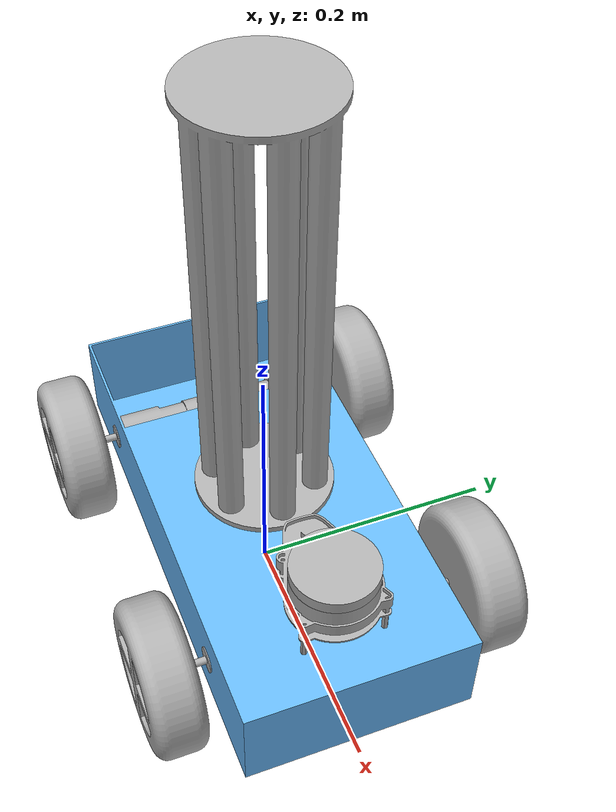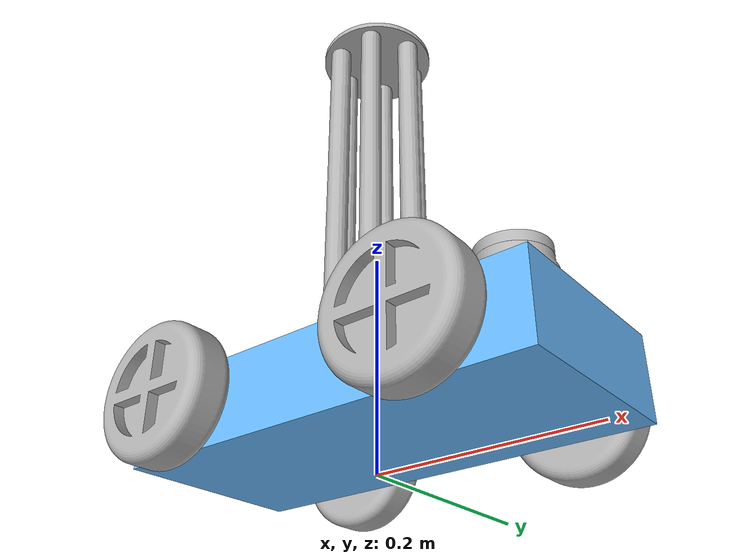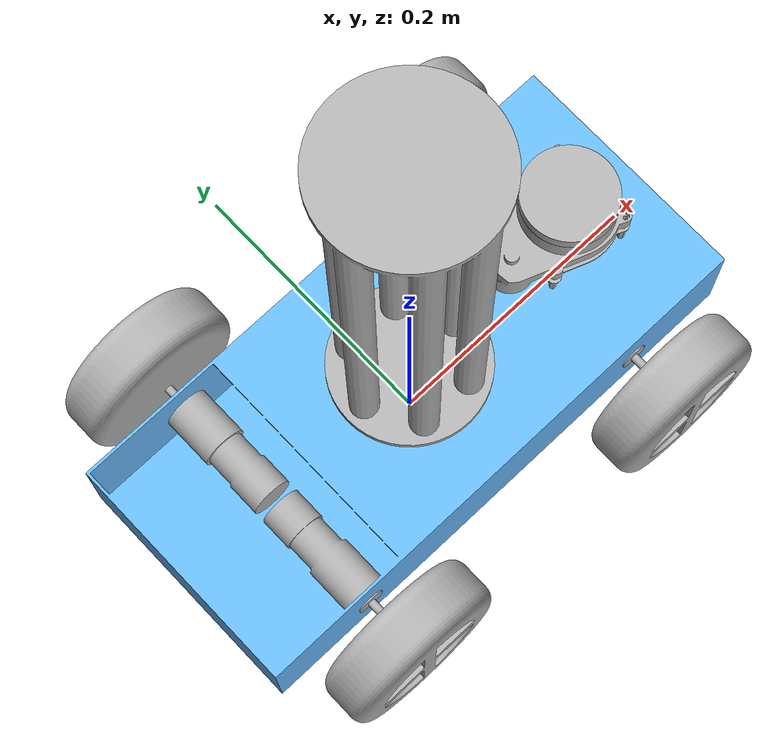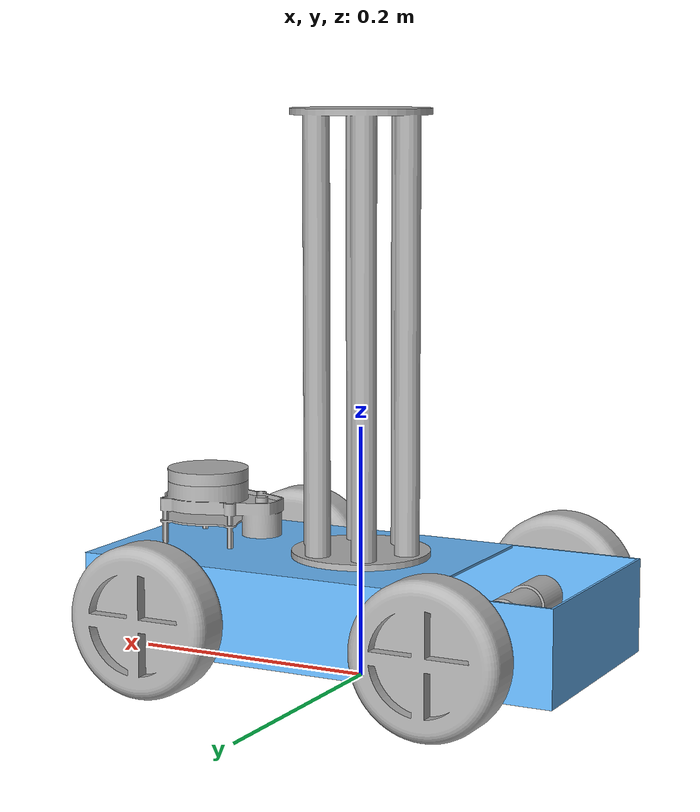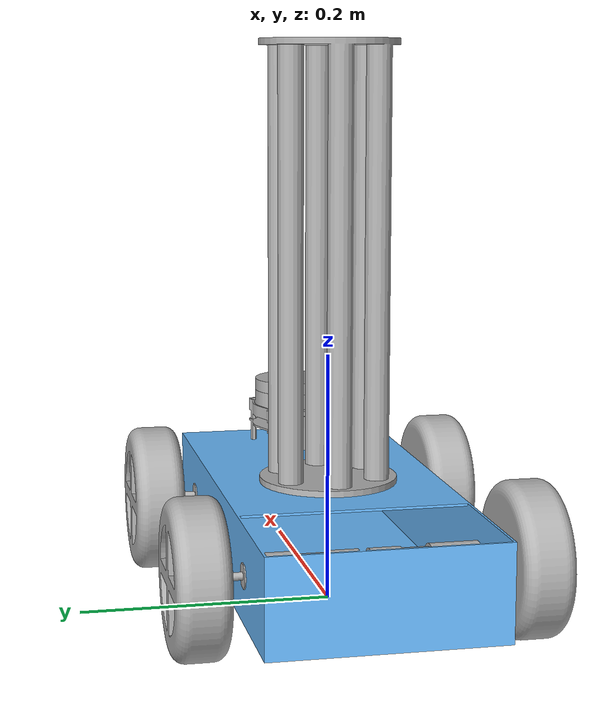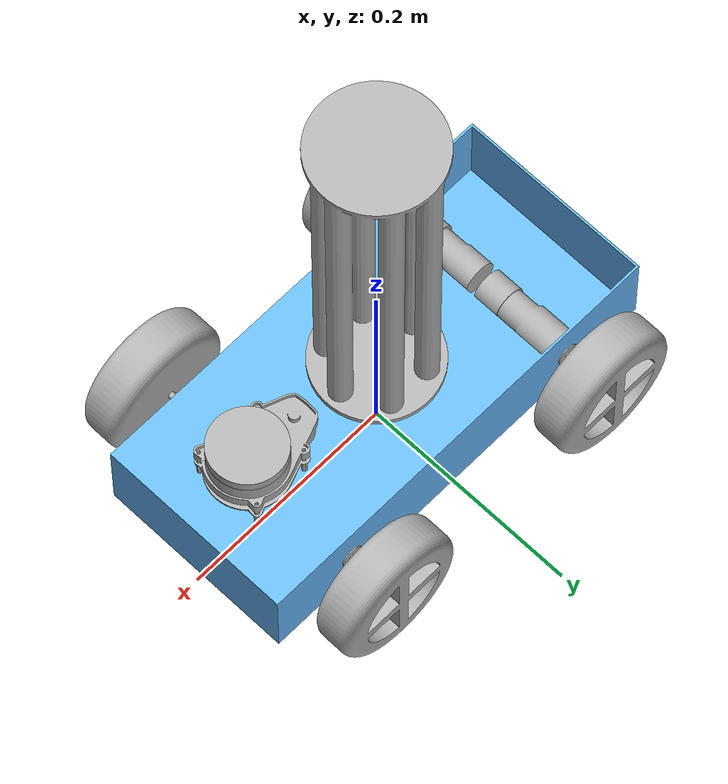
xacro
<?xml version="1.0" ?>
<robot name="gokul" xmlns:xacro="http://www.ros.org/wiki/xacro">

<xacro:include filename="$(find gokul_description)/urdf/materials.xacro" />
<xacro:include filename="$(find gokul_description)/urdf/gokul.trans" />
<xacro:include filename="$(find gokul_description)/gazebo/gokul_materials.gazebo" />
<xacro:include filename="$(find gokul_description)/gazebo/gokul_physics.gazebo" />
<xacro:include filename="$(find gokul_description)/gazebo/gokul_plugins.gazebo" />

<link name="base_link">
  <inertial>
    <origin rpy="0 0 0" xyz="0.013059632318862986 -5.92759272841735e-16 0.0567125753128379"/>
    <mass value="0.43912831999999896"/>
    <inertia ixx="0.002235" ixy="0.0" ixz="-0.000228" iyy="0.007253" iyz="0.0" izz="0.008643"/>
  </inertial>
  <visual>
    <origin rpy="0 0 0" xyz="0 0 0"/>
    <geometry>
      <mesh filename="package://gokul_description/meshes/base_link.stl" scale="0.001 0.001 0.001"/>
    </geometry>
    <material name="blue"/>
  </visual>
  <collision>
    <origin rpy="0 0 0" xyz="0 0 0"/>
    <geometry>
      <mesh filename="package://gokul_description/meshes/base_link.stl" scale="0.001 0.001 0.001"/>
    </geometry>
  </collision>
</link>

<link name="wheel_rf_1">
  <inertial>
    <origin rpy="0 0 0" xyz="-2.1204843436706255e-12 -0.020911344793692346 -4.163336342344337e-16"/>
    <mass value="0.3041090636805748"/>
    <inertia ixx="0.000403" ixy="-0.0" ixz="-0.0" iyy="0.000666" iyz="-0.0" izz="0.000403"/>
  </inertial>
  <visual>
    <origin rpy="0 0 0" xyz="-0.12 0.106 -0.06"/>
    <geometry>
      <mesh filename="package://gokul_description/meshes/wheel_rf_1.stl" scale="0.001 0.001 0.001"/>
    </geometry>
    <material name="silver"/>
  </visual>
  <collision>
    <origin rpy="0 0 0" xyz="-0.12 0.106 -0.06"/>
    <geometry>
      <mesh filename="package://gokul_description/meshes/wheel_rf_1.stl" scale="0.001 0.001 0.001"/>
    </geometry>
  </collision>
</link>

<link name="wheel_rb_1">
  <inertial>
    <origin rpy="0 0 0" xyz="-2.1196794319777723e-12 -0.020911344793691625 -4.163336342344337e-17"/>
    <mass value="0.3041090636805748"/>
    <inertia ixx="0.000403" ixy="-0.0" ixz="-0.0" iyy="0.000666" iyz="-0.0" izz="0.000403"/>
  </inertial>
  <visual>
    <origin rpy="0 0 0" xyz="0.12 0.106 -0.06"/>
    <geometry>
      <mesh filename="package://gokul_description/meshes/wheel_rb_1.stl" scale="0.001 0.001 0.001"/>
    </geometry>
    <material name="silver"/>
  </visual>
  <collision>
    <origin rpy="0 0 0" xyz="0.12 0.106 -0.06"/>
    <geometry>
      <mesh filename="package://gokul_description/meshes/wheel_rb_1.stl" scale="0.001 0.001 0.001"/>
    </geometry>
  </collision>
</link>

<link name="wheel_lf_1">
  <inertial>
    <origin rpy="0 0 0" xyz="-2.1197210653411958e-12 0.02091134479369207 2.0816681711721685e-16"/>
    <mass value="0.30410906368057344"/>
    <inertia ixx="0.000403" ixy="-0.0" ixz="0.0" iyy="0.000666" iyz="0.0" izz="0.000403"/>
  </inertial>
  <visual>
    <origin rpy="0 0 0" xyz="-0.12 -0.106 -0.06"/>
    <geometry>
      <mesh filename="package://gokul_description/meshes/wheel_lf_1.stl" scale="0.001 0.001 0.001"/>
    </geometry>
    <material name="silver"/>
  </visual>
  <collision>
    <origin rpy="0 0 0" xyz="-0.12 -0.106 -0.06"/>
    <geometry>
      <mesh filename="package://gokul_description/meshes/wheel_lf_1.stl" scale="0.001 0.001 0.001"/>
    </geometry>
  </collision>
</link>

<link name="wheel_lb_1">
  <inertial>
    <origin rpy="0 0 0" xyz="7.771561172376096e-16 0.020911344793691763 4.3021142204224816e-16"/>
    <mass value="0.30410906368057566"/>
    <inertia ixx="0.000403" ixy="0.0" ixz="0.0" iyy="0.000666" iyz="0.0" izz="0.000403"/>
  </inertial>
  <visual>
    <origin rpy="0 0 0" xyz="0.12 -0.106 -0.06"/>
    <geometry>
      <mesh filename="package://gokul_description/meshes/wheel_lb_1.stl" scale="0.001 0.001 0.001"/>
    </geometry>
    <material name="silver"/>
  </visual>
  <collision>
    <origin rpy="0 0 0" xyz="0.12 -0.106 -0.06"/>
    <geometry>
      <mesh filename="package://gokul_description/meshes/wheel_lb_1.stl" scale="0.001 0.001 0.001"/>
    </geometry>
  </collision>
</link>

<link name="motor_rf_1">
  <inertial>
    <origin rpy="0 0 0" xyz="1.8041124150158794e-15 0.042362614481282646 0.0"/>
    <mass value="0.4868541648357804"/>
    <inertia ixx="0.000339" ixy="0.0" ixz="0.0" iyy="5.6e-05" iyz="0.0" izz="0.000339"/>
  </inertial>
  <visual>
    <origin rpy="0 0 0" xyz="-0.12 0.091 -0.06"/>
    <geometry>
      <mesh filename="package://gokul_description/meshes/motor_rf_1.stl" scale="0.001 0.001 0.001"/>
    </geometry>
    <material name="silver"/>
  </visual>
  <collision>
    <origin rpy="0 0 0" xyz="-0.12 0.091 -0.06"/>
    <geometry>
      <mesh filename="package://gokul_description/meshes/motor_rf_1.stl" scale="0.001 0.001 0.001"/>
    </geometry>
  </collision>
</link>

<link name="motor_br_1">
  <inertial>
    <origin rpy="0 0 0" xyz="-1.8318679906315083e-15 0.04236261448128265 2.0816681711721685e-17"/>
    <mass value="0.48685416483578053"/>
    <inertia ixx="0.000339" ixy="-0.0" ixz="-0.0" iyy="5.6e-05" iyz="0.0" izz="0.000339"/>
  </inertial>
  <visual>
    <origin rpy="0 0 0" xyz="0.12 0.091 -0.06"/>
    <geometry>
      <mesh filename="package://gokul_description/meshes/motor_br_1.stl" scale="0.001 0.001 0.001"/>
    </geometry>
    <material name="silver"/>
  </visual>
  <collision>
    <origin rpy="0 0 0" xyz="0.12 0.091 -0.06"/>
    <geometry>
      <mesh filename="package://gokul_description/meshes/motor_br_1.stl" scale="0.001 0.001 0.001"/>
    </geometry>
  </collision>
</link>

<link name="motor_lf_1">
  <inertial>
    <origin rpy="0 0 0" xyz="1.8041124150158794e-15 -0.042362614481282646 0.0"/>
    <mass value="0.4868541648357804"/>
    <inertia ixx="0.000339" ixy="-0.0" ixz="0.0" iyy="5.6e-05" iyz="-0.0" izz="0.000339"/>
  </inertial>
  <visual>
    <origin rpy="0 0 0" xyz="-0.12 -0.091 -0.06"/>
    <geometry>
      <mesh filename="package://gokul_description/meshes/motor_lf_1.stl" scale="0.001 0.001 0.001"/>
    </geometry>
    <material name="silver"/>
  </visual>
  <collision>
    <origin rpy="0 0 0" xyz="-0.12 -0.091 -0.06"/>
    <geometry>
      <mesh filename="package://gokul_description/meshes/motor_lf_1.stl" scale="0.001 0.001 0.001"/>
    </geometry>
  </collision>
</link>

<link name="motor_bl_1">
  <inertial>
    <origin rpy="0 0 0" xyz="-1.8318679906315083e-15 -0.04236261448128268 1.3877787807814457e-17"/>
    <mass value="0.48685416483578053"/>
    <inertia ixx="0.000339" ixy="0.0" ixz="-0.0" iyy="5.6e-05" iyz="-0.0" izz="0.000339"/>
  </inertial>
  <visual>
    <origin rpy="0 0 0" xyz="0.12 -0.091 -0.06"/>
    <geometry>
      <mesh filename="package://gokul_description/meshes/motor_bl_1.stl" scale="0.001 0.001 0.001"/>
    </geometry>
    <material name="silver"/>
  </visual>
  <collision>
    <origin rpy="0 0 0" xyz="0.12 -0.091 -0.06"/>
    <geometry>
      <mesh filename="package://gokul_description/meshes/motor_bl_1.stl" scale="0.001 0.001 0.001"/>
    </geometry>
  </collision>
</link>

<link name="lidar_base_1">
  <inertial>
    <origin rpy="0 0 0" xyz="0.0042228618156789355 -3.1098521215329866e-16 0.01582168630574969"/>
    <mass value="0.8862433475570365"/>
    <inertia ixx="0.000324" ixy="-0.0" ixz="-0.000101" iyy="0.000672" iyz="0.0" izz="0.00082"/>
  </inertial>
  <visual>
    <origin rpy="0 0 0" xyz="-0.125 0.0 -0.1145"/>
    <geometry>
      <mesh filename="package://gokul_description/meshes/lidar_base_1.stl" scale="0.001 0.001 0.001"/>
    </geometry>
    <material name="silver"/>
  </visual>
  <collision>
    <origin rpy="0 0 0" xyz="-0.125 0.0 -0.1145"/>
    <geometry>
      <mesh filename="package://gokul_description/meshes/lidar_base_1.stl" scale="0.001 0.001 0.001"/>
    </geometry>
  </collision>
</link>

<link name="lidar_top_1">
  <inertial>
    <origin rpy="0 0 0" xyz="0.014999999999999708 -3.084146509213745e-16 0.005499999999999977"/>
    <mass value="0.2653183066743863"/>
    <inertia ixx="7.4e-05" ixy="0.0" ixz="-0.0" iyy="7.4e-05" iyz="0.0" izz="0.000143"/>
  </inertial>
  <visual>
    <origin rpy="0 0 0" xyz="-0.125 0.0 -0.146"/>
    <geometry>
      <mesh filename="package://gokul_description/meshes/lidar_top_1.stl" scale="0.001 0.001 0.001"/>
    </geometry>
    <material name="silver"/>
  </visual>
  <collision>
    <origin rpy="0 0 0" xyz="-0.125 0.0 -0.146"/>
    <geometry>
      <mesh filename="package://gokul_description/meshes/lidar_top_1.stl" scale="0.001 0.001 0.001"/>
    </geometry>
  </collision>
</link>

<link name="uv_lamp_1">
  <inertial>
    <origin rpy="0 0 0" xyz="-2.9171432727473463e-16 -3.272414640627397e-16 0.17500000000000018"/>
    <mass value="0.32147339813490866"/>
    <inertia ixx="0.004912" ixy="-0.0" ixz="-0.0" iyy="0.004912" iyz="0.0" izz="0.000529"/>
  </inertial>
  <visual>
    <origin rpy="0 0 0" xyz="-0.0 -0.0 -0.0975"/>
    <geometry>
      <mesh filename="package://gokul_description/meshes/uv_lamp_1.stl" scale="0.001 0.001 0.001"/>
    </geometry>
    <material name="silver"/>
  </visual>
  <collision>
    <origin rpy="0 0 0" xyz="-0.0 -0.0 -0.0975"/>
    <geometry>
      <mesh filename="package://gokul_description/meshes/uv_lamp_1.stl" scale="0.001 0.001 0.001"/>
    </geometry>
  </collision>
</link>

<joint name="rev_rf" type="continuous">
  <origin rpy="0 0 0" xyz="0.0 -0.015 0.0"/>
  <parent link="motor_rf_1"/>
  <child link="wheel_rf_1"/>
  <axis xyz="-0.0 1.0 0.0"/>
</joint>

<joint name="rev_rb" type="continuous">
  <origin rpy="0 0 0" xyz="0.0 -0.015 0.0"/>
  <parent link="motor_br_1"/>
  <child link="wheel_rb_1"/>
  <axis xyz="0.0 1.0 0.0"/>
</joint>

<joint name="rev_lf" type="continuous">
  <origin rpy="0 0 0" xyz="0.0 0.015 0.0"/>
  <parent link="motor_lf_1"/>
  <child link="wheel_lf_1"/>
  <axis xyz="-0.0 1.0 0.0"/>
</joint>

<joint name="rev_lb" type="continuous">
  <origin rpy="0 0 0" xyz="0.0 0.015 0.0"/>
  <parent link="motor_bl_1"/>
  <child link="wheel_lb_1"/>
  <axis xyz="0.0 1.0 0.0"/>
</joint>

<joint name="Rigid32" type="fixed">
  <origin rpy="0 0 0" xyz="0.12 -0.091 0.06"/>
  <parent link="base_link"/>
  <child link="motor_rf_1"/>
</joint>

<joint name="Rigid33" type="fixed">
  <origin rpy="0 0 0" xyz="-0.12 -0.091 0.06"/>
  <parent link="base_link"/>
  <child link="motor_br_1"/>
</joint>

<joint name="Rigid34" type="fixed">
  <origin rpy="0 0 0" xyz="0.12 0.091 0.06"/>
  <parent link="base_link"/>
  <child link="motor_lf_1"/>
</joint>

<joint name="Rigid35" type="fixed">
  <origin rpy="0 0 0" xyz="-0.12 0.091 0.06"/>
  <parent link="base_link"/>
  <child link="motor_bl_1"/>
</joint>

<joint name="Rigid36" type="fixed">
  <origin rpy="0 0 0" xyz="0.125 0.0 0.1145"/>
  <parent link="base_link"/>
  <child link="lidar_base_1"/>
</joint>

<joint name="Rigid37" type="fixed">
  <origin rpy="0 0 0" xyz="0.0 0.0 0.0315"/>
  <parent link="lidar_base_1"/>
  <child link="lidar_top_1"/>
</joint>

<joint name="Rigid38" type="fixed">
  <origin rpy="0 0 0" xyz="0.0 0.0 0.0975"/>
  <parent link="base_link"/>
  <child link="uv_lamp_1"/>
</joint>

</robot>

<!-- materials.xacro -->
<robot name="gokul" xmlns:xacro="http://www.ros.org/wiki/xacro" >

<material name="silver">
  <color rgba="0.700 0.700 0.700 1.000"/>
</material>

<material name="blue">
  <color rgba="0.4117 0.733 1.000 1.000"/>
</material>

</robot>

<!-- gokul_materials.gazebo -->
<robot name="gokul" xmlns:xacro="http://www.ros.org/wiki/xacro" >

<xacro:property name="body_color" value="Gazebo/SkyBlue" />
<xacro:property name="motor_color" value="Gazebo/DarkGrey" />
<xacro:property name="wheel_color" value="Gazebo/Grey" />
<xacro:property name="lidar_base_color" value="Gazebo/Black" />
<xacro:property name="lidar_top_color" value="Gazebo/Blue" />
<xacro:property name="uv_color" value="Gazebo/PurpleGlow" />

<!-- ################### WHEELS ############### -->

<gazebo reference="wheel_rf_1">
  <material>${wheel_color}</material>
</gazebo>

<gazebo reference="wheel_rb_1">
  <material>${wheel_color}</material>
</gazebo>

<gazebo reference="wheel_lf_1">
  <material>${wheel_color}</material>
</gazebo>

<gazebo reference="wheel_lb_1">
  <material>${wheel_color}</material>
</gazebo>

<!-- ################### BASELINK ############### -->

<gazebo reference="base_link">
  <material>${body_color}</material>
</gazebo>

<gazebo reference="motor_rf_1">
  <material>${motor_color}</material>
</gazebo>

<gazebo reference="motor_br_1">
  <material>${motor_color}</material>
</gazebo>

<gazebo reference="motor_lf_1">
  <material>${motor_color}</material>
</gazebo>

<gazebo reference="motor_bl_1">
  <material>${motor_color}</material>
</gazebo>

<gazebo reference="lidar_base_1">
  <material>${lidar_base_color}</material>
</gazebo>

<gazebo reference="lidar_top_1">
  <material>${lidar_top_color}</material>
</gazebo>

<gazebo reference="uv_lamp_1">
  <material>${uv_color}</material>
</gazebo>

</robot>
